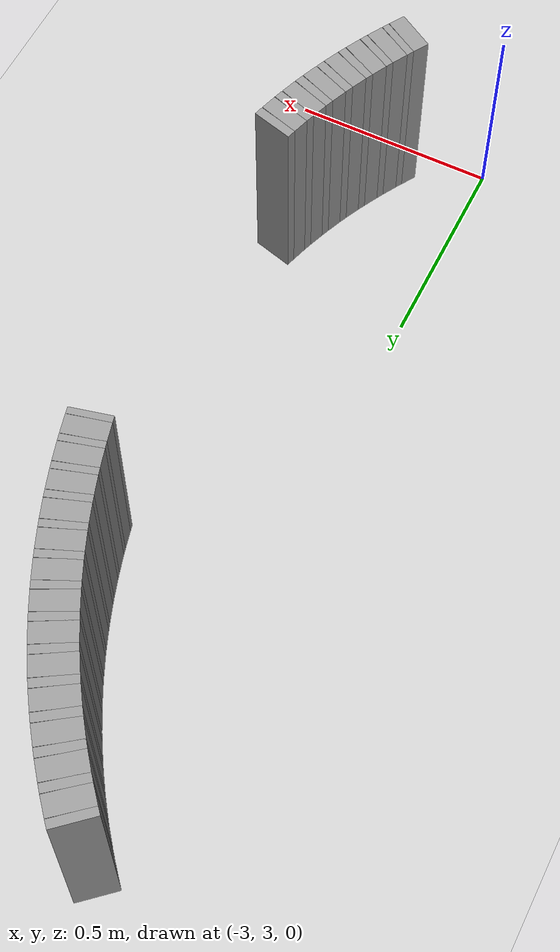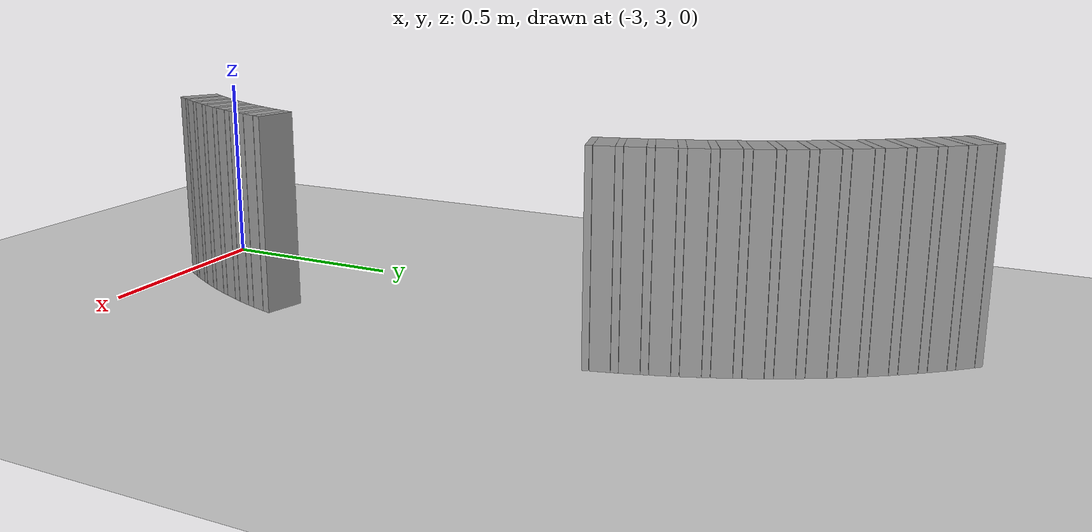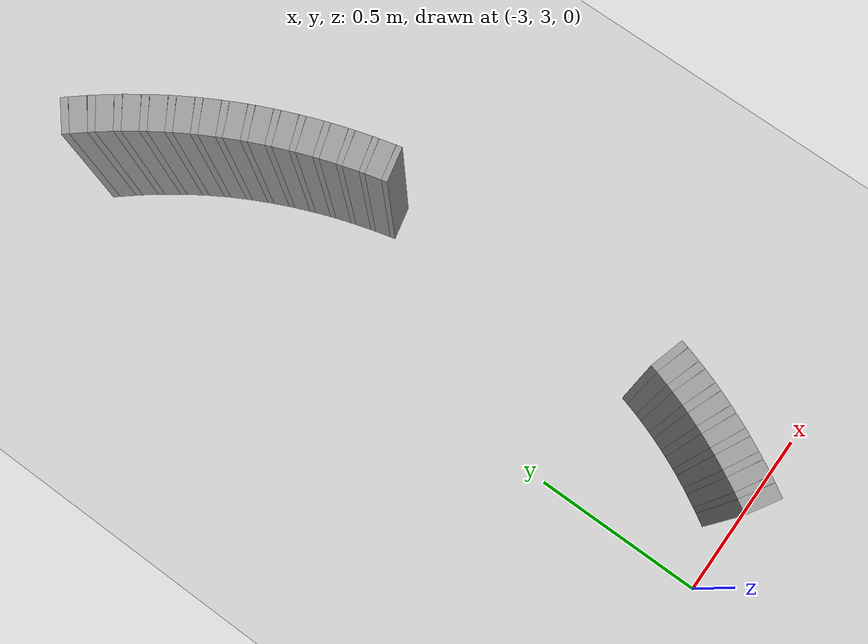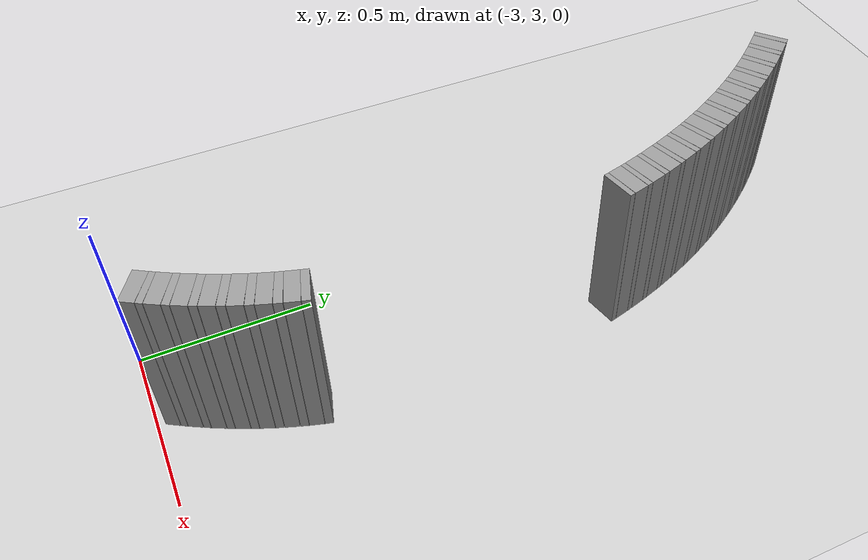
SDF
<sdf version="1.6">
 <world name="default">
  <include><uri>model://ground_plane</uri></include>
  <include><uri>model://sun</uri></include>
  <model name="wall_828_outward">
   <static>true</static>
   <link name="link">
    <collision name="collision">
     <geometry><box><size>0.02020967089527678 0.1 0.5</size></box></geometry>
    </collision>
    <visual name="visual">
     <geometry><box><size>0.02020967089527678 0.1 0.5</size></box></geometry>
     <material>
      <script><uri>file://media/materials/scripts/gazebo.material</uri><name>Gazebo/Gray</name></script>
     </material>
    </visual>
   </link>
   <pose>-3.0096744776101487 5.026423329631152 0.25 0 0 -0.8456192304179819</pose>
  </model>
  <model name="wall_829_outward">
   <static>true</static>
   <link name="link">
    <collision name="collision">
     <geometry><box><size>0.0470943109435954 0.1 0.5</size></box></geometry>
    </collision>
    <visual name="visual">
     <geometry><box><size>0.0470943109435954 0.1 0.5</size></box></geometry>
     <material>
      <script><uri>file://media/materials/scripts/gazebo.material</uri><name>Gazebo/Gray</name></script>
     </material>
    </visual>
   </link>
   <pose>-2.9877135192600077 5.000926749288242 0.25 0 0 -0.8658302772748199</pose>
  </model>
  <model name="wall_830_outward">
   <static>true</static>
   <link name="link">
    <collision name="collision">
     <geometry><box><size>0.020513973833596464 0.1 0.5</size></box></geometry>
    </collision>
    <visual name="visual">
     <geometry><box><size>0.020513973833596464 0.1 0.5</size></box></geometry>
     <material>
      <script><uri>file://media/materials/scripts/gazebo.material</uri><name>Gazebo/Gray</name></script>
     </material>
    </visual>
   </link>
   <pose>-2.965969820678158 4.9750456757883175 0.25 0 0 -0.8863456901733601</pose>
  </model>
  <model name="wall_831_outward">
   <static>true</static>
   <link name="link">
    <collision name="collision">
     <geometry><box><size>0.04686665259576309 0.1 0.5</size></box></geometry>
    </collision>
    <visual name="visual">
     <geometry><box><size>0.04686665259576309 0.1 0.5</size></box></geometry>
     <material>
      <script><uri>file://media/materials/scripts/gazebo.material</uri><name>Gazebo/Gray</name></script>
     </material>
    </visual>
   </link>
   <pose>-2.9450447613101707 4.94864344222316 0.25 0 0 -0.9068611030719202</pose>
  </model>
  <model name="wall_832_outward">
   <static>true</static>
   <link name="link">
    <collision name="collision">
     <geometry><box><size>0.02060122249371632 0.1 0.5</size></box></geometry>
    </collision>
    <visual name="visual">
     <geometry><box><size>0.02060122249371632 0.1 0.5</size></box></geometry>
     <material>
      <script><uri>file://media/materials/scripts/gazebo.material</uri><name>Gazebo/Gray</name></script>
     </material>
    </visual>
   </link>
   <pose>-2.9244256784566947 4.921946447813065 0.25 0 0 -0.9274637830727612</pose>
  </model>
  <model name="wall_833_outward">
   <static>true</static>
   <link name="link">
    <collision name="collision">
     <geometry><box><size>0.04672341164993869 0.1 0.5</size></box></geometry>
    </collision>
    <visual name="visual">
     <geometry><box><size>0.04672341164993869 0.1 0.5</size></box></geometry>
     <material>
      <script><uri>file://media/materials/scripts/gazebo.material</uri><name>Gazebo/Gray</name></script>
     </material>
    </visual>
   </link>
   <pose>-2.904620874495625 4.894728453951981 0.25 0 0 -0.9480664630735853</pose>
  </model>
  <model name="wall_834_outward">
   <static>true</static>
   <link name="link">
    <collision name="collision">
     <geometry><box><size>0.020499290683562547 0.1 0.5</size></box></geometry>
    </collision>
    <visual name="visual">
     <geometry><box><size>0.020499290683562547 0.1 0.5</size></box></geometry>
     <material>
      <script><uri>file://media/materials/scripts/gazebo.material</uri><name>Gazebo/Gray</name></script>
     </material>
    </visual>
   </link>
   <pose>-2.885188820277445 4.867305515306008 0.25 0 0 -0.9685671897338209</pose>
  </model>
  <model name="wall_835_outward">
   <static>true</static>
   <link name="link">
    <collision name="collision">
     <geometry><box><size>0.046648552464152976 0.1 0.5</size></box></geometry>
    </collision>
    <visual name="visual">
     <geometry><box><size>0.046648552464152976 0.1 0.5</size></box></geometry>
     <material>
      <script><uri>file://media/materials/scripts/gazebo.material</uri><name>Gazebo/Gray</name></script>
     </material>
    </visual>
   </link>
   <pose>-2.8665666287550584 4.839371276067286 0.25 0 0 -0.9890679163940818</pose>
  </model>
  <model name="wall_836_outward">
   <static>true</static>
   <link name="link">
    <collision name="collision">
     <geometry><box><size>0.020254225410671105 0.1 0.5</size></box></geometry>
    </collision>
    <visual name="visual">
     <geometry><box><size>0.020254225410671105 0.1 0.5</size></box></geometry>
     <material>
      <script><uri>file://media/materials/scripts/gazebo.material</uri><name>Gazebo/Gray</name></script>
     </material>
    </visual>
   </link>
   <pose>-2.848358651448049 4.811311196345466 0.25 0 0 -1.0093235268879521</pose>
  </model>
  <model name="wall_837_outward">
   <static>true</static>
   <link name="link">
    <collision name="collision">
     <geometry><box><size>0.0466226272457806 0.1 0.5</size></box></geometry>
    </collision>
    <visual name="visual">
     <geometry><box><size>0.0466226272457806 0.1 0.5</size></box></geometry>
     <material>
      <script><uri>file://media/materials/scripts/gazebo.material</uri><name>Gazebo/Gray</name></script>
     </material>
    </visual>
   </link>
   <pose>-2.8309571244728655 4.782759167383166 0.25 0 0 -1.0295791373817593</pose>
  </model>
  <model name="wall_838_outward">
   <static>true</static>
   <link name="link">
    <collision name="collision">
     <geometry><box><size>0.01987092450162855 0.1 0.5</size></box></geometry>
    </collision>
    <visual name="visual">
     <geometry><box><size>0.01987092450162855 0.1 0.5</size></box></geometry>
     <material>
      <script><uri>file://media/materials/scripts/gazebo.material</uri><name>Gazebo/Gray</name></script>
     </material>
    </visual>
   </link>
   <pose>-2.813999285289317 4.7541639171541 0.25 0 0 -1.0494513698002705</pose>
  </model>
  <model name="wall_839_outward">
   <static>true</static>
   <link name="link">
    <collision name="collision">
     <geometry><box><size>0.0466245588916325 0.1 0.5</size></box></geometry>
    </collision>
    <visual name="visual">
     <geometry><box><size>0.0466245588916325 0.1 0.5</size></box></geometry>
     <material>
      <script><uri>file://media/materials/scripts/gazebo.material</uri><name>Gazebo/Gray</name></script>
     </material>
    </visual>
   </link>
   <pose>-2.797844339777475 4.725106412115169 0.25 0 0 -1.0693236022187877</pose>
  </model>
  <model name="wall_840_outward">
   <static>true</static>
   <link name="link">
    <collision name="collision">
     <geometry><box><size>0.019424452906580916 0.1 0.5</size></box></geometry>
    </collision>
    <visual name="visual">
     <geometry><box><size>0.019424452906580916 0.1 0.5</size></box></geometry>
     <material>
      <script><uri>file://media/materials/scripts/gazebo.material</uri><name>Gazebo/Gray</name></script>
     </material>
    </visual>
   </link>
   <pose>-2.7821351908901097 4.696058947597945 0.25 0 0 -1.088749276837514</pose>
  </model>
  <model name="wall_841_outward">
   <static>true</static>
   <link name="link">
    <collision name="collision">
     <geometry><box><size>0.046632967318190305 0.1 0.5</size></box></geometry>
    </collision>
    <visual name="visual">
     <geometry><box><size>0.046632967318190305 0.1 0.5</size></box></geometry>
     <material>
      <script><uri>file://media/materials/scripts/gazebo.material</uri><name>Gazebo/Gray</name></script>
     </material>
    </visual>
   </link>
   <pose>-2.767226620655596 4.666587863912281 0.25 0 0 -1.1081749514562151</pose>
  </model>
  <model name="wall_842_outward">
   <static>true</static>
   <link name="link">
    <collision name="collision">
     <geometry><box><size>0.018941155725214563 0.1 0.5</size></box></geometry>
    </collision>
    <visual name="visual">
     <geometry><box><size>0.018941155725214563 0.1 0.5</size></box></geometry>
     <material>
      <script><uri>file://media/materials/scripts/gazebo.material</uri><name>Gazebo/Gray</name></script>
     </material>
    </visual>
   </link>
   <pose>-2.7527551898183455 4.637168654840234 0.25 0 0 -1.127117239942472</pose>
  </model>
  <model name="wall_843_outward">
   <static>true</static>
   <link name="link">
    <collision name="collision">
     <geometry><box><size>0.04662742388985454 0.1 0.5</size></box></geometry>
    </collision>
    <visual name="visual">
     <geometry><box><size>0.04662742388985454 0.1 0.5</size></box></geometry>
     <material>
      <script><uri>file://media/materials/scripts/gazebo.material</uri><name>Gazebo/Gray</name></script>
     </material>
    </visual>
   </link>
   <pose>-2.7390826627090257 4.607372808825698 0.25 0 0 -1.1460595284286939</pose>
  </model>
  <model name="wall_844_outward">
   <static>true</static>
   <link name="link">
    <collision name="collision">
     <geometry><box><size>0.018437943730808863 0.1 0.5</size></box></geometry>
    </collision>
    <visual name="visual">
     <geometry><box><size>0.018437943730808863 0.1 0.5</size></box></geometry>
     <material>
      <script><uri>file://media/materials/scripts/gazebo.material</uri><name>Gazebo/Gray</name></script>
     </material>
    </visual>
   </link>
   <pose>-2.7258320840508095 4.577662127104865 0.25 0 0 -1.164498517006395</pose>
  </model>
  <model name="wall_845_outward">
   <static>true</static>
   <link name="link">
    <collision name="collision">
     <geometry><box><size>0.04659213237388486 0.1 0.5</size></box></geometry>
    </collision>
    <visual name="visual">
     <geometry><box><size>0.04659213237388486 0.1 0.5</size></box></geometry>
     <material>
      <script><uri>file://media/materials/scripts/gazebo.material</uri><name>Gazebo/Gray</name></script>
     </material>
    </visual>
   </link>
   <pose>-2.7133779038856316 4.547628011861403 0.25 0 0 -1.1829375055840738</pose>
  </model>
  <model name="wall_846_outward">
   <static>true</static>
   <link name="link">
    <collision name="collision">
     <geometry><box><size>0.017945633206185793 0.1 0.5</size></box></geometry>
    </collision>
    <visual name="visual">
     <geometry><box><size>0.017945633206185793 0.1 0.5</size></box></geometry>
     <material>
      <script><uri>file://media/materials/scripts/gazebo.material</uri><name>Gazebo/Gray</name></script>
     </material>
    </visual>
   </link>
   <pose>-2.7013231904537434 4.517696467338611 0.25 0 0 -1.2008841021490357</pose>
  </model>
  <model name="wall_847_outward">
   <static>true</static>
   <link name="link">
    <collision name="collision">
     <geometry><box><size>0.04651477287192599 0.1 0.5</size></box></geometry>
    </collision>
    <visual name="visual">
     <geometry><box><size>0.04651477287192599 0.1 0.5</size></box></geometry>
     <material>
      <script><uri>file://media/materials/scripts/gazebo.material</uri><name>Gazebo/Gray</name></script>
     </material>
    </visual>
   </link>
   <pose>-2.6900613806530975 4.487498943985514 0.25 0 0 -1.2188306987139985</pose>
  </model>
  <model name="wall_848_outward">
   <static>true</static>
   <link name="link">
    <collision name="collision">
     <geometry><box><size>0.01747514999707907 0.1 0.5</size></box></geometry>
    </collision>
    <visual name="visual">
     <geometry><box><size>0.01747514999707907 0.1 0.5</size></box></geometry>
     <material>
      <script><uri>file://media/materials/scripts/gazebo.material</uri><name>Gazebo/Gray</name></script>
     </material>
    </visual>
   </link>
   <pose>-2.679175112435034 4.457413986625886 0.25 0 0 -1.2363067382627464</pose>
  </model>
  <model name="wall_849_outward">
   <static>true</static>
   <link name="link">
    <collision name="collision">
     <geometry><box><size>0.046385912080436575 0.1 0.5</size></box></geometry>
    </collision>
    <visual name="visual">
     <geometry><box><size>0.046385912080436575 0.1 0.5</size></box></geometry>
     <material>
      <script><uri>file://media/materials/scripts/gazebo.material</uri><name>Gazebo/Gray</name></script>
     </material>
    </visual>
   </link>
   <pose>-2.6690767318343016 4.427123400110554 0.25 0 0 -1.2537827778114752</pose>
  </model>
  <model name="wall_850_outward">
   <static>true</static>
   <link name="link">
    <collision name="collision">
     <geometry><box><size>0.017035352506020233 0.1 0.5</size></box></geometry>
    </collision>
    <visual name="visual">
     <geometry><box><size>0.017035352506020233 0.1 0.5</size></box></geometry>
     <material>
      <script><uri>file://media/materials/scripts/gazebo.material</uri><name>Gazebo/Gray</name></script>
     </material>
    </visual>
   </link>
   <pose>-2.6593298229769626 4.396948830779284 0.25 0 0 -1.2708189543775081</pose>
  </model>
  <model name="wall_851_outward">
   <static>true</static>
   <link name="link">
    <collision name="collision">
     <geometry><box><size>0.04620133838569949 0.1 0.5</size></box></geometry>
    </collision>
    <visual name="visual">
     <geometry><box><size>0.04620133838569949 0.1 0.5</size></box></geometry>
     <material>
      <script><uri>file://media/materials/scripts/gazebo.material</uri><name>Gazebo/Gray</name></script>
     </material>
    </visual>
   </link>
   <pose>-2.650363591388194 4.36662937573584 0.25 0 0 -1.2878551309435569</pose>
  </model>
  <model name="wall_852_outward">
   <static>true</static>
   <link name="link">
    <collision name="collision">
     <geometry><box><size>0.01662620922466521 0.1 0.5</size></box></geometry>
    </collision>
    <visual name="visual">
     <geometry><box><size>0.01662620922466521 0.1 0.5</size></box></geometry>
     <material>
      <script><uri>file://media/materials/scripts/gazebo.material</uri><name>Gazebo/Gray</name></script>
     </material>
    </visual>
   </link>
   <pose>-2.641726499977844 4.336427178006508 0.25 0 0 -1.3044821062630108</pose>
  </model>
  <model name="wall_853_outward">
   <static>true</static>
   <link name="link">
    <collision name="collision">
     <geometry><box><size>0.04595858850682752 0.1 0.5</size></box></geometry>
    </collision>
    <visual name="visual">
     <geometry><box><size>0.04595858850682752 0.1 0.5</size></box></geometry>
     <material>
      <script><uri>file://media/materials/scripts/gazebo.material</uri><name>Gazebo/Gray</name></script>
     </material>
    </visual>
   </link>
   <pose>-2.6338604741968004 4.306140430819779 0.25 0 0 -1.321109081582447</pose>
  </model>
  <model name="wall_854_outward">
   <static>true</static>
   <link name="link">
    <collision name="collision">
     <geometry><box><size>0.016276104682124787 0.1 0.5</size></box></geometry>
    </collision>
    <visual name="visual">
     <geometry><box><size>0.016276104682124787 0.1 0.5</size></box></geometry>
     <material>
      <script><uri>file://media/materials/scripts/gazebo.material</uri><name>Gazebo/Gray</name></script>
     </material>
    </visual>
   </link>
   <pose>-2.6262999640563334 4.2759563555155 0.25 0 0 -1.3373859049717036</pose>
  </model>
  <model name="wall_882_outward">
   <static>true</static>
   <link name="link">
    <collision name="collision">
     <geometry><box><size>0.022595254367797305 0.1 0.5</size></box></geometry>
    </collision>
    <visual name="visual">
     <geometry><box><size>0.022595254367797305 0.1 0.5</size></box></geometry>
     <material>
      <script><uri>file://media/materials/scripts/gazebo.material</uri><name>Gazebo/Gray</name></script>
     </material>
    </visual>
   </link>
   <pose>-2.628416376126002 3.432563290770544 0.25 0 0 -1.842395769958847</pose>
  </model>
  <model name="wall_883_outward">
   <static>true</static>
   <link name="link">
    <collision name="collision">
     <geometry><box><size>0.040365499462693584 0.1 0.5</size></box></geometry>
    </collision>
    <visual name="visual">
     <geometry><box><size>0.040365499462693584 0.1 0.5</size></box></geometry>
     <material>
      <script><uri>file://media/materials/scripts/gazebo.material</uri><name>Gazebo/Gray</name></script>
     </material>
    </visual>
   </link>
   <pose>-2.6372996336125274 3.402364194109536 0.25 0 0 -1.8649929474195002</pose>
  </model>
  <model name="wall_884_outward">
   <static>true</static>
   <link name="link">
    <collision name="collision">
     <geometry><box><size>0.02273560194838424 0.1 0.5</size></box></geometry>
    </collision>
    <visual name="visual">
     <geometry><box><size>0.02273560194838424 0.1 0.5</size></box></geometry>
     <material>
      <script><uri>file://media/materials/scripts/gazebo.material</uri><name>Gazebo/Gray</name></script>
     </material>
    </visual>
   </link>
   <pose>-2.6466948782913473 3.3722469562546378 0.25 0 0 -1.8877305085245055</pose>
  </model>
  <model name="wall_885_outward">
   <static>true</static>
   <link name="link">
    <collision name="collision">
     <geometry><box><size>0.04040307060486038 0.1 0.5</size></box></geometry>
    </collision>
    <visual name="visual">
     <geometry><box><size>0.04040307060486038 0.1 0.5</size></box></geometry>
     <material>
      <script><uri>file://media/materials/scripts/gazebo.material</uri><name>Gazebo/Gray</name></script>
     </material>
    </visual>
   </link>
   <pose>-2.656968408421614 3.342398022438346 0.25 0 0 -1.9104680696295409</pose>
  </model>
  <model name="wall_886_outward">
   <static>true</static>
   <link name="link">
    <collision name="collision">
     <geometry><box><size>0.022529142617835864 0.1 0.5</size></box></geometry>
    </collision>
    <visual name="visual">
     <geometry><box><size>0.022529142617835864 0.1 0.5</size></box></geometry>
     <material>
      <script><uri>file://media/materials/scripts/gazebo.material</uri><name>Gazebo/Gray</name></script>
     </material>
    </visual>
   </link>
   <pose>-2.6676905390903913 3.3128170105753414 0.25 0 0 -1.9329991185065794</pose>
  </model>
  <model name="wall_887_outward">
   <static>true</static>
   <link name="link">
    <collision name="collision">
     <geometry><box><size>0.040526063371698264 0.1 0.5</size></box></geometry>
    </collision>
    <visual name="visual">
     <geometry><box><size>0.040526063371698264 0.1 0.5</size></box></geometry>
     <material>
      <script><uri>file://media/materials/scripts/gazebo.material</uri><name>Gazebo/Gray</name></script>
     </material>
    </visual>
   </link>
   <pose>-2.679286938557228 3.283501529989248 0.25 0 0 -1.9555301673836356</pose>
  </model>
  <model name="wall_888_outward">
   <static>true</static>
   <link name="link">
    <collision name="collision">
     <geometry><box><size>0.021977623345674283 0.1 0.5</size></box></geometry>
    </collision>
    <visual name="visual">
     <geometry><box><size>0.021977623345674283 0.1 0.5</size></box></geometry>
     <material>
      <script><uri>file://media/materials/scripts/gazebo.material</uri><name>Gazebo/Gray</name></script>
     </material>
    </visual>
   </link>
   <pose>-2.6912390015502927 3.2546273488060184 0.25 0 0 -1.9775095603710016</pose>
  </model>
  <model name="wall_889_outward">
   <static>true</static>
   <link name="link">
    <collision name="collision">
     <geometry><box><size>0.040719668474271775 0.1 0.5</size></box></geometry>
    </collision>
    <visual name="visual">
     <geometry><box><size>0.040719668474271775 0.1 0.5</size></box></geometry>
     <material>
      <script><uri>file://media/materials/scripts/gazebo.material</uri><name>Gazebo/Gray</name></script>
     </material>
    </visual>
   </link>
   <pose>-2.704049314955065 3.226017466029803 0.25 0 0 -1.9994889533583708</pose>
  </model>
  <model name="wall_890_outward">
   <static>true</static>
   <link name="link">
    <collision name="collision">
     <geometry><box><size>0.02108760834184261 0.1 0.5</size></box></geometry>
    </collision>
    <visual name="visual">
     <geometry><box><size>0.02108760834184261 0.1 0.5</size></box></geometry>
     <material>
      <script><uri>file://media/materials/scripts/gazebo.material</uri><name>Gazebo/Gray</name></script>
     </material>
    </visual>
   </link>
   <pose>-2.717096653043799 3.1980048552270626 0.25 0 0 -2.020578124911399</pose>
  </model>
  <model name="wall_891_outward">
   <static>true</static>
   <link name="link">
    <collision name="collision">
     <geometry><box><size>0.04096485096662112 0.1 0.5</size></box></geometry>
    </collision>
    <visual name="visual">
     <geometry><box><size>0.04096485096662112 0.1 0.5</size></box></geometry>
     <material>
      <script><uri>file://media/materials/scripts/gazebo.material</uri><name>Gazebo/Gray</name></script>
     </material>
    </visual>
   </link>
   <pose>-2.7309728839769933 3.170256322020413 0.25 0 0 -2.0416672964644054</pose>
  </model>
  <model name="wall_892_outward">
   <static>true</static>
   <link name="link">
    <collision name="collision">
     <geometry><box><size>0.01991155365801916 0.1 0.5</size></box></geometry>
    </collision>
    <visual name="visual">
     <geometry><box><size>0.01991155365801916 0.1 0.5</size></box></geometry>
     <material>
      <script><uri>file://media/materials/scripts/gazebo.material</uri><name>Gazebo/Gray</name></script>
     </material>
    </visual>
   </link>
   <pose>-2.7449573256043625 3.1432222935226646 0.25 0 0 -2.0615801660793918</pose>
  </model>
  <model name="wall_893_outward">
   <static>true</static>
   <link name="link">
    <collision name="collision">
     <geometry><box><size>0.041236913422225394 0.1 0.5</size></box></geometry>
    </collision>
    <visual name="visual">
     <geometry><box><size>0.041236913422225394 0.1 0.5</size></box></geometry>
     <material>
      <script><uri>file://media/materials/scripts/gazebo.material</uri><name>Gazebo/Gray</name></script>
     </material>
    </visual>
   </link>
   <pose>-2.7597276519808673 3.1164540320410707 0.25 0 0 -2.081493035694389</pose>
  </model>
  <model name="wall_894_outward">
   <static>true</static>
   <link name="link">
    <collision name="collision">
     <geometry><box><size>0.01851448712079363 0.1 0.5</size></box></geometry>
    </collision>
    <visual name="visual">
     <geometry><box><size>0.01851448712079363 0.1 0.5</size></box></geometry>
     <material>
      <script><uri>file://media/materials/scripts/gazebo.material</uri><name>Gazebo/Gray</name></script>
     </material>
    </visual>
   </link>
   <pose>-2.774479199917087 3.090475505005145 0.25 0 0 -2.100008580730267</pose>
  </model>
  <model name="wall_895_outward">
   <static>true</static>
   <link name="link">
    <collision name="collision">
     <geometry><box><size>0.04151201684356175 0.1 0.5</size></box></geometry>
    </collision>
    <visual name="visual">
     <geometry><box><size>0.04151201684356175 0.1 0.5</size></box></geometry>
     <material>
      <script><uri>file://media/materials/scripts/gazebo.material</uri><name>Gazebo/Gray</name></script>
     </material>
    </visual>
   </link>
   <pose>-2.7899614177789793 3.064764994414021 0.25 0 0 -2.1185241257661342</pose>
  </model>
 </world>
</sdf>
